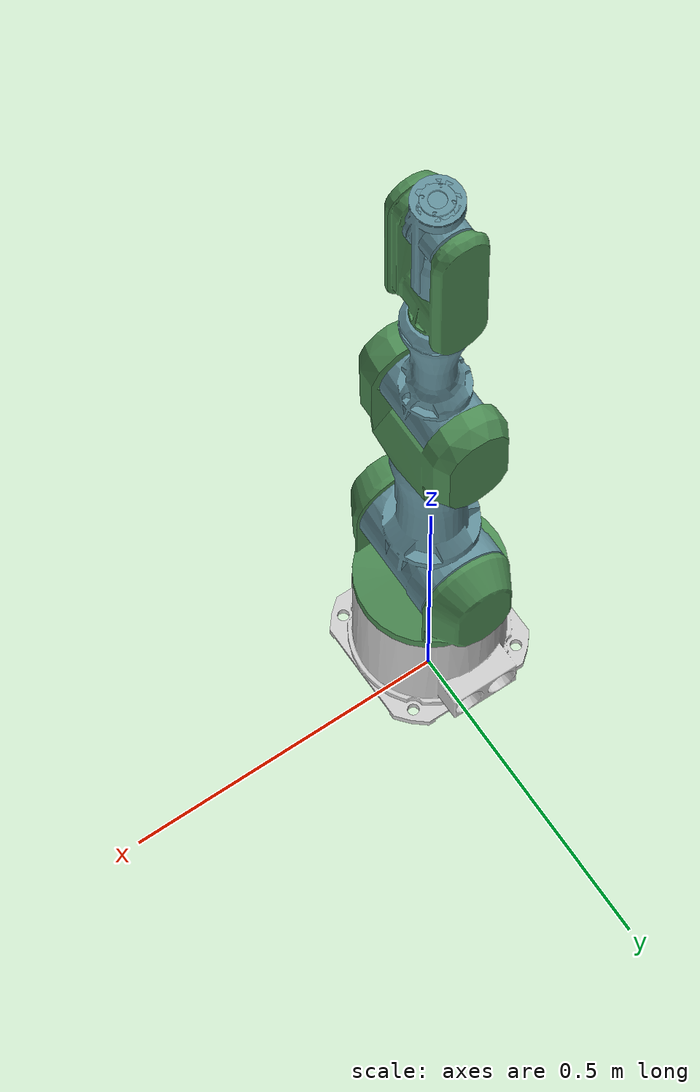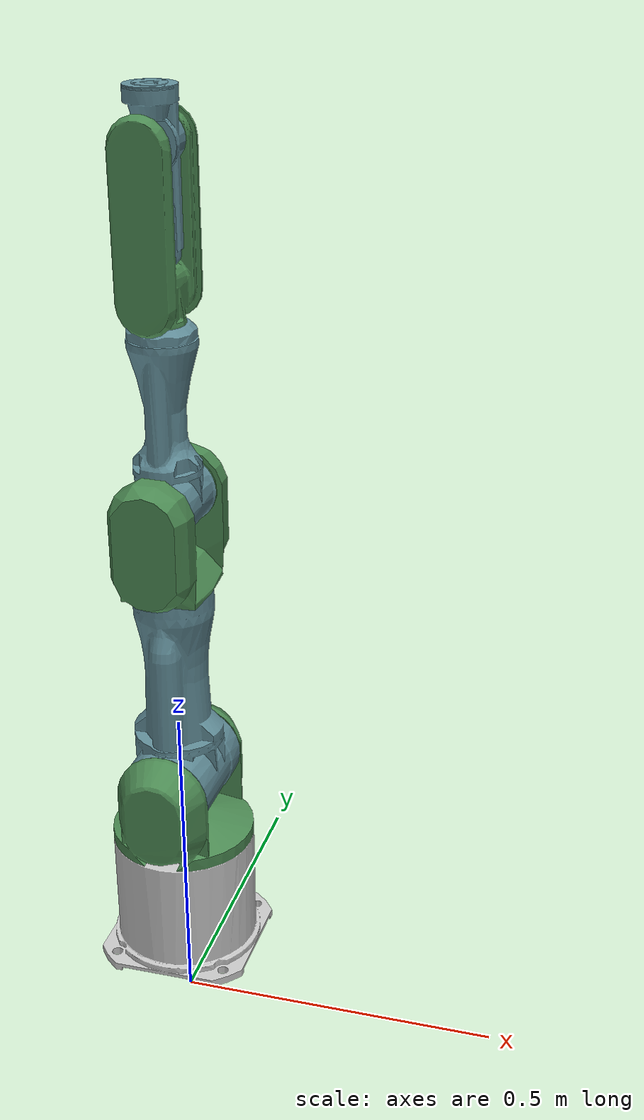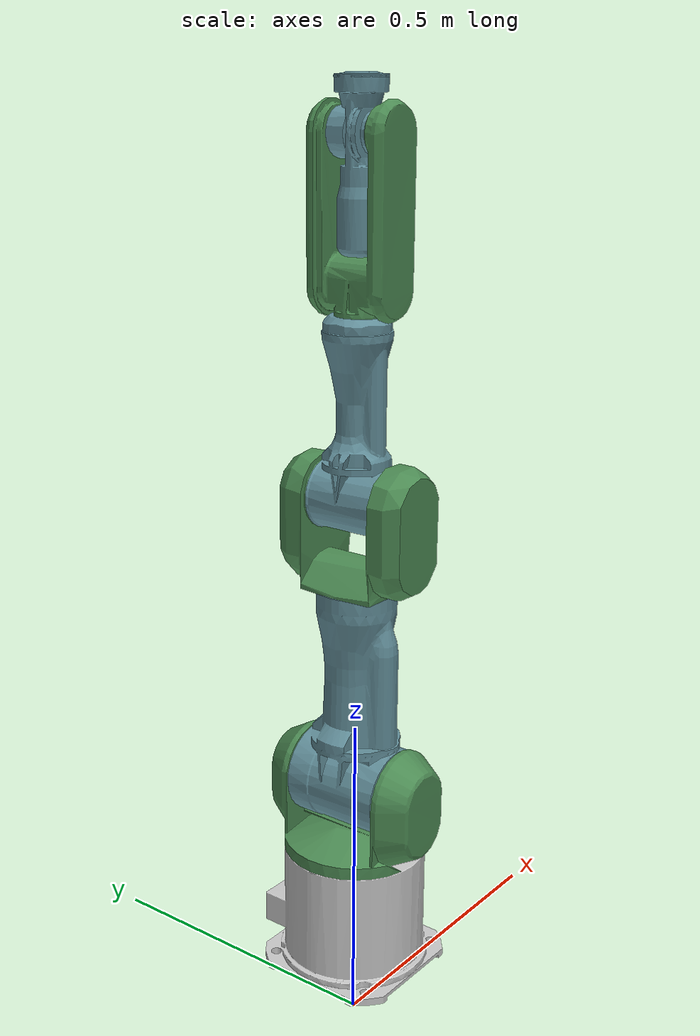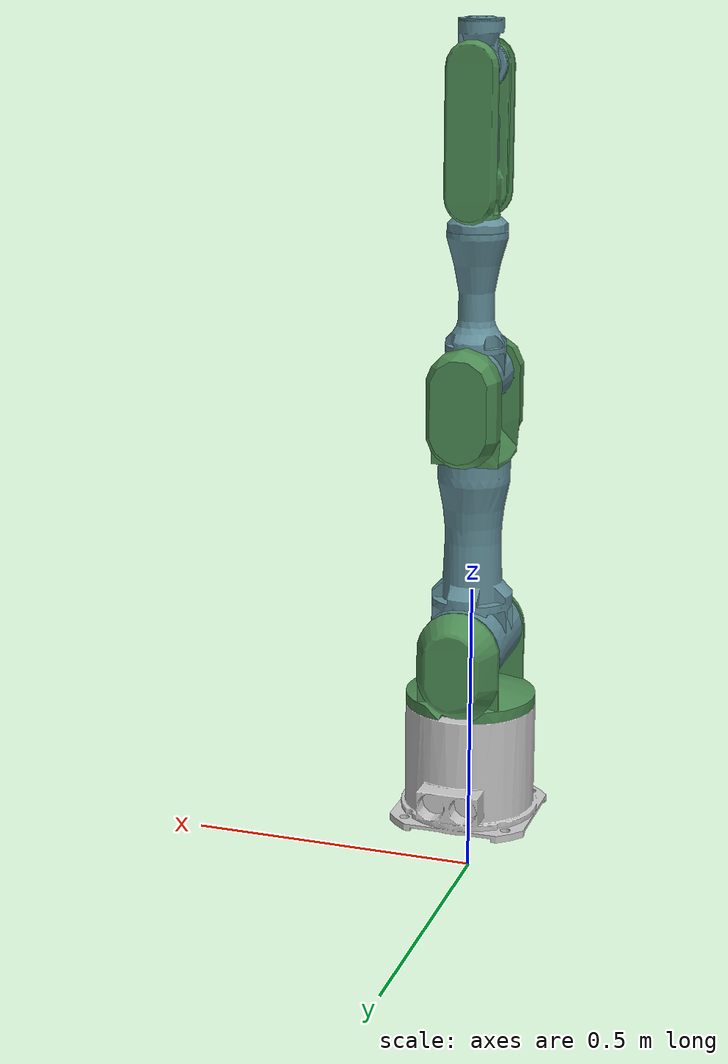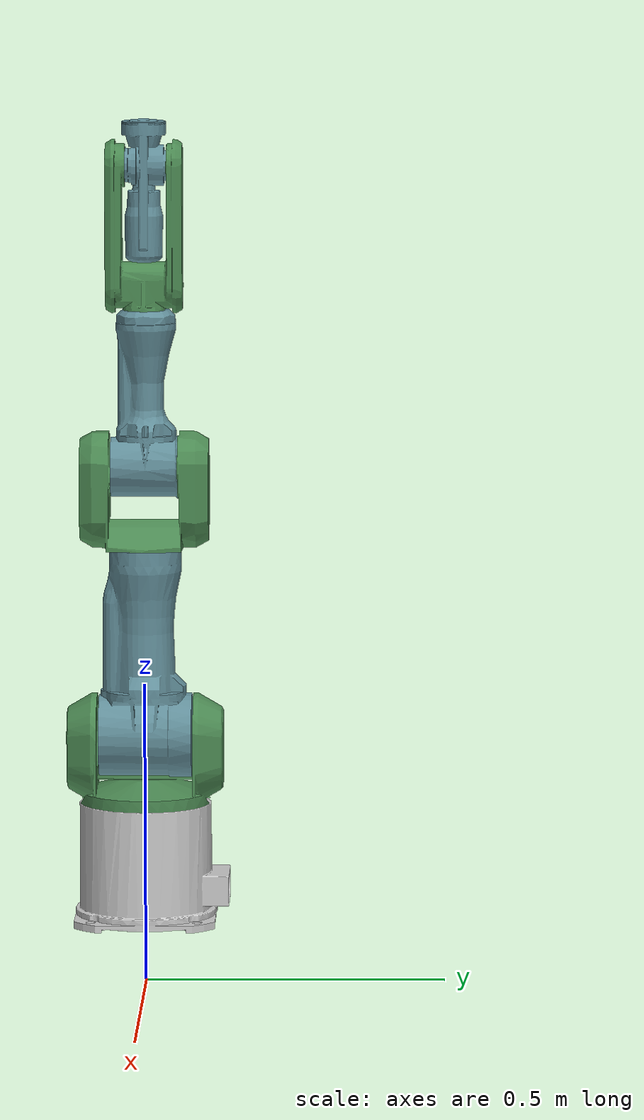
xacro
<?xml version="1.0"?>
<robot name="pa10-7a" xmlns:xacro="http://www.ros.org/wiki/xacro" >

  <xacro:include filename="$(find pa10_7a_description)/urdf/pa10-7a.urdf.xacro"/>
  <xacro:include filename="$(find pa10_7a_description)/urdf/pa10_ros_controller_manager.xacro"/>

  <link name="world" />

  <joint name="world_pa10_arm_base_joint" type="fixed">
    <origin xyz="0 0 0.1" rpy="0 0 0"/>
    <parent link="world"/>
    <child link="arm_base_link"/>
  </joint>

  <xacro:pa10_7a_arm name="" />
  <xacro:pa10_gazebo_ros_controller_manager namespace="" />

</robot>

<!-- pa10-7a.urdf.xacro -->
<robot name="PA10-7a"
		 xmlns:xacro="http://www.ros.org/wiki/xacro"
		 xmlns:sensor="http://playerstage.sourceforge.net/gazebo/xmlschema/#sensor"
		 xmlns:controller="http://playerstage.sourceforge.net/gazebo/xmlschema/#controller"
       xmlns:interface="http://playerstage.sourceforge.net/gazebo/xmlschema/#interface">

  <xacro:macro name="pa10_7a_arm" params="name kinematic:=false">
  <link name="${name}arm_base_link">
    <visual>
      <origin xyz="0 0 0" rpy="0 0 0"/>
      <geometry>
        <mesh filename="package://pa10_7a_description/meshes/link0_mesh.dae" scale="1 1 1" />
      </geometry>
    </visual>
    <collision>
      <origin xyz="0 0 0.100" rpy="0 0 0"/>
      <geometry>
		  <cylinder length="0.20" radius="0.115"/>
      </geometry>
    </collision>
    <collision>
       <origin xyz="0 0.120 0.060" rpy="0 0 0"/>
      <geometry>
        <box size="0.130 0.060 0.060" />
      </geometry>
    </collision>
    <inertial>
      <mass value="3.04" />
      <origin xyz="0 0 0.075" rpy="0 0 0"/>
      <inertia ixx="0.0193" ixy="0" ixz="0" iyy="0.0193" iyz="0" izz="0.0184"/>
    </inertial>
  </link>
  <gazebo reference="${name}arm_base_link">
    <material>LightGrey</material>
    <selfCollide>false</selfCollide>
    <kinematic>${kinematic}</kinematic>
  </gazebo>

  <link name="${name}arm_1_link">
    <visual>
      <origin xyz="0 0 0" rpy="0 0 0"/>
      <geometry>
        <mesh filename="package://pa10_7a_description/meshes/link1_mesh.dae" scale="1 1 1" />
      </geometry>
    </visual>
    <collision>
      <origin xyz="0 0 0.210" rpy="0 0 0"/>
      <geometry>
        <cylinder length="0.020" radius="0.110"/>
      </geometry>
    </collision>
    <collision>
      <origin xyz="0.0 0.104 0.298" rpy="0 0 0"/>
      <geometry>
		  <box size="0.140 0.05 0.180" />
      </geometry>
    </collision>
    <collision>
      <origin xyz="0.0 -0.104 0.298" rpy="0 0 0"/>
      <geometry>
		  <box size="0.140 0.05 0.180" />
      </geometry>
    </collision>
    <inertial>
      <mass value="9.78" />
      <origin xyz="0 0 0.148" rpy="0 0 0"/>
      <inertia ixx="0.145" ixy="0" ixz="0" iyy="0.145" iyz="0" izz="0.049"/>
    </inertial>
  </link>
  <gazebo reference="${name}arm_1_link">
    <kinematic>${kinematic}</kinematic>
  </gazebo>

  <link name="${name}arm_2_link">
    <visual>
      <origin xyz="0 0 -0.315" rpy="0 0 3.1415"/>
      <geometry>
        <mesh filename="package://pa10_7a_description/meshes/link2_mesh.dae" scale="1 1 1" />
      </geometry>
    </visual>
    <collision>
      <origin xyz="0 0 0.181" rpy="0 0 0"/>
      <geometry>
        <cylinder length="0.266" radius="0.07"/>
      </geometry>
    </collision>
    <collision>
      <origin xyz="0 0 0.0" rpy="1.5708 0 0"/>
      <geometry>
        <cylinder length="0.160" radius="0.075"/>
      </geometry>
    </collision>
    <inertial>
      <mass value="8.41" />
      <origin xyz="0 0 0.06325" rpy="0 0 0"/>
      <inertia ixx="0.1316" ixy="0" ixz="0" iyy="0.1316" iyz="0" izz="0.0206"/>
    </inertial>
  </link>
  <gazebo reference="${name}arm_2_link">
    <kinematic>${kinematic}</kinematic>
  </gazebo>
  <link name="${name}arm_3_link">
    <visual>
      <origin xyz="0 0 -0.315" rpy="0 0 0"/>
      <geometry>
        <mesh filename="package://pa10_7a_description/meshes/link3_mesh.dae" scale="1 1 1" />
      </geometry>
    </visual>
    <collision>
      <origin xyz="0 0 0.336" rpy="0 0 0"/>
      <geometry>
         <box size="0.120 0.116 0.044" />
      </geometry>
    </collision>
    <collision>
      <origin xyz="0.0 0.083 0.411" rpy="0 0 0"/>
      <geometry>
		  <box size="0.120 0.05 0.20" />
      </geometry>
    </collision>
    <collision>
      <origin xyz="0.0 -0.083 0.411" rpy="0 0 0"/>
      <geometry>
		  <box size="0.120 0.05 0.20" />
      </geometry>
    </collision>
    <inertial>
      <mass value="3.51" />
      <origin xyz="0 0 0.3605" rpy="0 0 0"/>
      <inertia ixx="0.0298" ixy="0" ixz="0" iyy="0.0298" iyz="0" izz="0.009"/>
    </inertial>
  </link>
  <gazebo reference="${name}arm_3_link">
    <kinematic>${kinematic}</kinematic>
  </gazebo>
  <link name="${name}arm_4_link">
    <visual>
      <origin xyz="0 0 -0.765" rpy="0 0 0"/>
      <geometry>
        <mesh filename="package://pa10_7a_description/meshes/link4_mesh.dae" scale="1 1 1" />
      </geometry>
    </visual>
    <collision>
      <origin xyz="0 0 0.150" rpy="0 0 0"/>
      <geometry>
        <cylinder length="0.248" radius="0.055"/>
      </geometry>
    </collision>
    <collision>
      <origin xyz="0 0 0.0" rpy="1.5708 0 0"/>
      <geometry>
        <cylinder length="0.116" radius="0.055"/>
      </geometry>
    </collision>
    <inertial>
      <mass value="4.31" />
      <origin xyz="0 0 0.04609" rpy="0 0 0"/>
      <inertia ixx="0.0493" ixy="0" ixz="0" iyy="0.0493" iyz="0" izz="0.0065"/>
    </inertial>
  </link>
  <gazebo reference="${name}arm_4_link">
    <kinematic>${kinematic}</kinematic>
  </gazebo>
  <link name="${name}arm_5_link">
    <visual>
      <origin xyz="0 0 -0.765" rpy="0 0 0"/>
      <geometry>
        <mesh filename="package://pa10_7a_description/meshes/link5_mesh.dae" scale="1 1 1" />
      </geometry>
    </visual>
    <collision>
      <origin xyz="0 0 0.300" rpy="0 0 0"/>
      <geometry>
         <box size="0.09 0.082 0.070" />
      </geometry>
    </collision>
    <collision>
      <origin xyz="0.0 0.051 0.401" rpy="0 0 0"/>
      <geometry>
		  <box size="0.09 0.03 0.284" />
      </geometry>
    </collision>
    <collision>
      <origin xyz="0.0 -0.051 0.401" rpy="0 0 0"/>
      <geometry>
		  <box size="0.09 0.03 0.284" />
      </geometry>
    </collision>
    <inertial>
      <mass value="3.45" />
      <origin xyz="0 0 0.335" rpy="0 0 0"/>
      <inertia ixx="0.0486" ixy="0" ixz="0" iyy="0.0486" iyz="0" izz="0.0052"/>
    </inertial>
  </link>
  <gazebo reference="${name}arm_5_link">
    <kinematic>${kinematic}</kinematic>
  </gazebo>
  <link name="${name}arm_6_link">
    <visual>
      <origin xyz="0 0 -1.265" rpy="0 0 0"/>
      <geometry>
        <mesh filename="package://pa10_7a_description/meshes/link6_mesh.dae" scale="1 1 1" />
      </geometry>
    </visual>
    <collision>
      <origin xyz="0 0 -0.043" rpy="0 0 0"/>
      <geometry>
        <cylinder length="0.230" radius="0.035"/>
      </geometry>
    </collision>
    <inertial>
      <mass value="1.46" />
      <origin xyz="0 0 -0.03" rpy="0 0 0"/>
      <inertia ixx="0.0071" ixy="0" ixz="0" iyy="0.0071" iyz="0" izz="0.0015"/>
    </inertial>
  </link>
  <gazebo reference="${name}arm_6_link">
    <kinematic>${kinematic}</kinematic>
  </gazebo>
  <link name="${name}arm_7_link">
    <visual>
      <origin xyz="0 0 1.345" rpy="0 0 0"/>
      <geometry>
        <mesh filename="package://pa10_7a_description/meshes/link7_mesh.dae" scale="1 1 1" />
      </geometry>
    </visual>
    <collision>
      <origin xyz="0 0 -0.01" rpy="0 0 0"/>
      <geometry>
        <cylinder length="0.02" radius="0.035"/>
      </geometry>
    </collision>
    <inertial>
      <mass value="0.24" />
      <origin xyz="0 0 -0.029" rpy="0 0 0"/>
      <inertia ixx="0.0001" ixy="0" ixz="0" iyy="0.0001" iyz="0" izz="0.0002"/>
    </inertial>
  </link>
  <gazebo reference="${name}arm_7_link">
    <kinematic>${kinematic}</kinematic>
  </gazebo>

  <joint name="${name}S1" type="revolute">
    <parent link="${name}arm_base_link"/>
    <child  link="${name}arm_1_link"/>
    <origin xyz="0 0 0" rpy="0 0 0 "/>
    <axis   xyz="0 0 1"/>
    <limit lower="${-177/180*pi}" upper="${177/180*pi}" effort="100" velocity="1" />
    <dynamics damping="0.2" friction="0" />
  </joint>
  <gazebo reference="${name}S1">
    <provideFeedback>1</provideFeedback>
    <implicitSpringDamper>1</implicitSpringDamper>
  </gazebo>
  <transmission name="${name}S1_transmission">
    <type>transmission_interface/SimpleTransmission</type>
    <actuator name="${name}S1_actuator">
      <mechanicalReduction>1</mechanicalReduction>
    </actuator>
    <joint name="${name}S1">
      <hardwareInterface>PositionJointInterface</hardwareInterface>
    </joint>
  </transmission>

  <joint name="${name}S2" type="revolute">
    <parent link="${name}arm_1_link"/>
    <child  link="${name}arm_2_link"/>
    <origin xyz="0 0 0.315" rpy="0 0 0 "/>
    <axis   xyz="0 1 0"/>
    <limit lower="${-91/180*pi}" upper="${+91/180*pi}" effort="100" velocity="1" />
    <dynamics damping="0.2" friction="0" />
  </joint>
  <gazebo reference="${name}S2">
    <provideFeedback>1</provideFeedback>
    <implicitSpringDamper>1</implicitSpringDamper>
  </gazebo>
  <transmission name="${name}S2_transmission">
    <type>transmission_interface/SimpleTransmission</type>
    <actuator name="${name}S2_actuator">
      <mechanicalReduction>1</mechanicalReduction>
    </actuator>
    <joint name="${name}S2">
      <hardwareInterface>PositionJointInterface</hardwareInterface>
    </joint>
  </transmission>

  <joint name="${name}S3" type="revolute">
    <parent link="${name}arm_2_link"/>
    <child  link="${name}arm_3_link"/>
    <origin xyz="0 0 0" rpy="0 0 0 "/>
    <axis   xyz="0 0 1"/>
    <limit lower="${-174/180*pi}" upper="${174/180*pi}" effort="100" velocity="2" />
    <dynamics damping="0.2" friction="0" />
  </joint>
  <gazebo reference="${name}S3">
    <provideFeedback>1</provideFeedback>
    <implicitSpringDamper>1</implicitSpringDamper>
  </gazebo>
  <transmission name="${name}S3_transmission">
    <type>transmission_interface/SimpleTransmission</type>
    <actuator name="${name}S3_actuator">
      <mechanicalReduction>1</mechanicalReduction>
    </actuator>
    <joint name="${name}S3">
      <hardwareInterface>PositionJointInterface</hardwareInterface>
    </joint>
  </transmission>

  <joint name="${name}E1" type="revolute">
    <parent link="${name}arm_3_link"/>
    <child  link="${name}arm_4_link"/>
    <origin xyz="0 0 0.45" rpy="0 0 0 "/>
    <axis   xyz="0 1 0"/>
    <limit lower="${-137/180*pi}" upper="${137/180*pi}" effort="100" velocity="2" />
    <dynamics damping="0.2" friction="0" />
  </joint>
  <gazebo reference="${name}E1">
    <provideFeedback>1</provideFeedback>
    <implicitSpringDamper>1</implicitSpringDamper>
  </gazebo>
  <transmission name="${name}E1_transmission">
    <type>transmission_interface/SimpleTransmission</type>
    <actuator name="${name}E1_actuator">
      <mechanicalReduction>1</mechanicalReduction>
    </actuator>
    <joint name="${name}E1">
      <hardwareInterface>PositionJointInterface</hardwareInterface>
    </joint>
  </transmission>

  <joint name="${name}E2" type="revolute">
    <parent link="${name}arm_4_link"/>
    <child  link="${name}arm_5_link"/>
    <origin xyz="0 0 0" rpy="0 0 0 "/>
    <axis   xyz="0 0 1"/>
    <limit lower="${-255/180*pi}" upper="${255/180*pi}" effort="100" velocity="6.28" />
    <dynamics damping="0.2" friction="0" />
  </joint>
  <gazebo reference="${name}E2">
    <provideFeedback>1</provideFeedback>
    <implicitSpringDamper>1</implicitSpringDamper>
  </gazebo>
  <transmission name="${name}E2_transmission">
    <type>transmission_interface/SimpleTransmission</type>
    <actuator name="${name}E2_actuator">
      <mechanicalReduction>1</mechanicalReduction>
    </actuator>
    <joint name="${name}E2">
      <hardwareInterface>PositionJointInterface</hardwareInterface>
    </joint>
  </transmission>

  <joint name="${name}W1" type="revolute">
    <parent link="${name}arm_5_link"/>
    <child  link="${name}arm_6_link"/>
    <origin xyz="0 0 0.5" rpy="0 0 0 "/>
    <axis   xyz="0 1 0"/>
    <limit lower="${-165/180*pi}" upper="${165/180*pi}" effort="100" velocity="6.28" />
    <dynamics damping="0.2" friction="0" />
  </joint>
  <gazebo reference="${name}W1">
    <provideFeedback>1</provideFeedback>
    <implicitSpringDamper>1</implicitSpringDamper>
  </gazebo>
  <transmission name="${name}W1_transmission">
    <type>transmission_interface/SimpleTransmission</type>
    <actuator name="${name}W1_actuator">
      <mechanicalReduction>1</mechanicalReduction>
    </actuator>
    <joint name="${name}W1">
      <hardwareInterface>PositionJointInterface</hardwareInterface>
    </joint>
  </transmission>

  <joint name="${name}W2" type="revolute">
    <parent link="${name}arm_6_link"/>
    <child  link="${name}arm_7_link"/>
    <origin xyz="0 0 0.08" rpy="0 0 0 "/>
    <axis   xyz="0 0 1"/>
    <limit lower="${-359/180*pi}" upper="${359/180*pi}" effort="100" velocity="6.28" />
    <dynamics damping="0.2" friction="0" />
  </joint>
  <gazebo reference="${name}W1">
    <provideFeedback>1</provideFeedback>
    <implicitSpringDamper>1</implicitSpringDamper>
  </gazebo>
  <transmission name="${name}W2_transmission">
    <type>transmission_interface/SimpleTransmission</type>
    <actuator name="${name}W2_actuator">
      <mechanicalReduction>1</mechanicalReduction>
    </actuator>
    <joint name="${name}W2">
      <hardwareInterface>PositionJointInterface</hardwareInterface>
    </joint>
  </transmission>

  <joint name="${name}arm_hand_fixed_joint" type="fixed">
	 <parent link="${name}arm_7_link"/>
	 <child link="${name}tool_mount"/>
  </joint>

  <link name="${name}tool_mount" />
  <gazebo reference="${name}tool_mount">
    <kinematic>${kinematic}</kinematic>
  </gazebo>
  </xacro:macro>
</robot>
